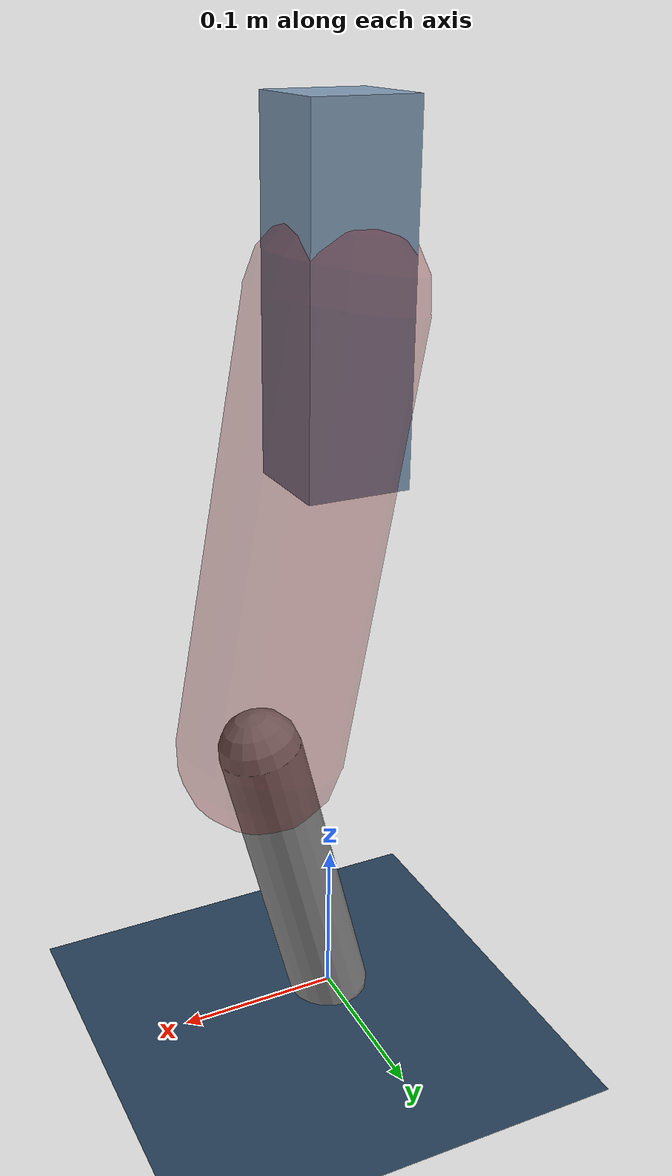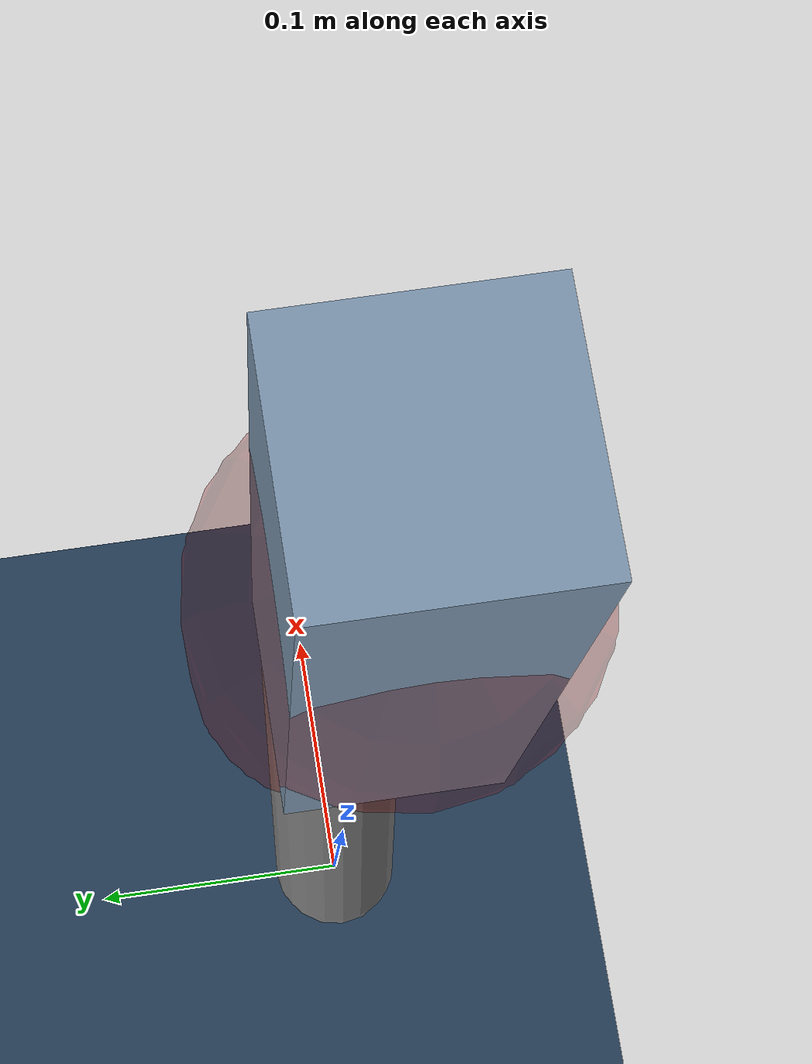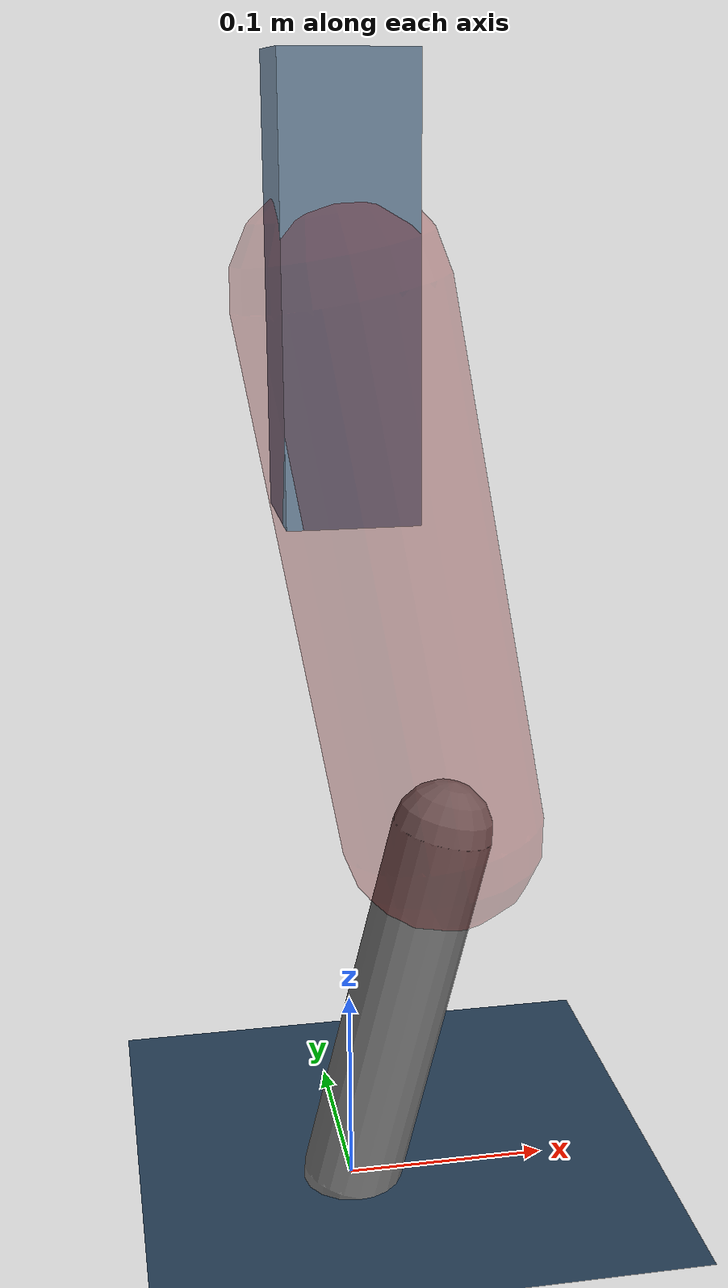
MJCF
<mujoco model="Hopper2D">
	<compiler inertiafromgeom="true" angle="radian" />
	<option timestep="0.001" integrator="implicit" cone="elliptic" solver="Newton" tolerance="1e-10" />

	<default>
		<geom contype="1" conaffinity="1" condim="3" friction="2 0.005 0.0001" solref="0.005 1" />
		<joint limited="true" damping="0.1" />
	</default>

	<asset>
		<texture name="skybox" type="skybox" builtin="gradient" rgb1=".4 .6 .8" rgb2="0 0 0" width="800" height="800" />
		<texture name="grid" type="2d" builtin="checker" rgb1=".1 .2 .3" rgb2=".2 .3 .4" width="300" height="300" mark="edge" markrgb=".2 .3 .4" />
		<material name="ground" texture="grid" texrepeat="1 1" texuniform="true" reflectance="0.1" />
		<material name="leg" rgba="0.5 0.6 0.7 1" />
	</asset>

	<worldbody>

		<geom name="floor" type="plane" size="5 5 0.25" material="ground" />

		<light directional="false" diffuse="0.8 0.8 0.8" specular="0.3 0.3 0.3" pos="0 0 2" dir="0 0 -1" />
		<light mode="targetbodycom" target="base" directional="false" diffuse="0.8 0.8 0.8" specular="0.3 0.3 0.3" pos="0 0 2" dir="0 0 -1" />

		<camera name="fixed" pos="0 -2 1" xyaxes="1 0 0 0 0 1" />
		<camera name="tracking" mode="trackcom" pos="0 -3 1" />

		<body name="root" pos="0 0 0.4468113600381737">
			<joint name="slide_x" type="slide" axis="1 0 0" range="-100 100" />
			<joint name="slide_z" type="slide" axis="0 0 1" range="0 10" />

			<body name="base" pos="0 0 0">
				<geom name="torso" type="box" size="0.03 0.03 0.1" mass="2.726" material="leg" />

				<body name="link1" pos="0 0 0" euler="0 1.3919400991048614 0">
					<joint type="hinge" axis="0 -1 0" pos="0 0 0" name="hinge1" limited="true" range="-3.14 3.14" stiffness="0" damping="0.1" />
					<geom name="thigh" type="capsule" fromto="0 0 0 0.26379115440896994 0 0" size="0.05" rgba="0.5 0 0 0.3" mass="0.8923570014633219" />

					<body name="link2" pos="0.26379115440896994 0 0" euler="0 0.42445050055245914 0">
						<joint type="hinge" axis="0 -1 0" pos="0 0 0" name="hinge2" limited="true" range="-3.14 3.14" stiffness="0" damping="0.1" />
						<geom name="shank" type="capsule" fromto="0 0 0 0.19302020562920377 0 0" size="0.025" mass="0.395016164503363" />

					</body>
				</body>
			</body>
		</body>
	</worldbody>

	<actuator>
		<motor name="torque1" joint="hinge1" ctrlrange="-79.4459276620127 79.4459276620127" ctrllimited="true" gear="1" />
		<motor name="torque2" joint="hinge2" ctrlrange="-55.59870257569707 55.59870257569707" ctrllimited="true" gear="1" />
	</actuator>
</mujoco>
